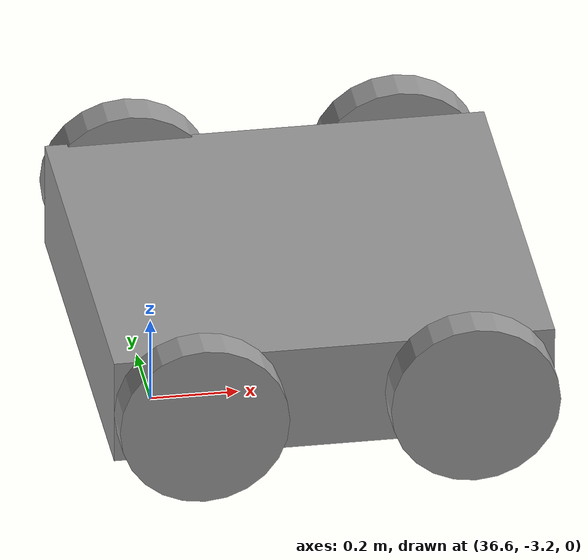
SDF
<?xml version='1.0'?>
<sdf version='1.6'>
  <model name='wheelrobot'>
    <link name='link_0'>
      <pose frame=''>37.0203 -2.68335 -0.038675 0 -0 0</pose>
      <inertial>
        <mass>1</mass>
        <inertia>
          <ixx>0.166667</ixx>
          <ixy>0</ixy>
          <ixz>0</ixz>
          <iyy>0.166667</iyy>
          <iyz>0</iyz>
          <izz>0.166667</izz>
        </inertia>
        <pose frame=''>0 0 0 0 -0 0</pose>
      </inertial>
      <gravity>1</gravity>
      <self_collide>0</self_collide>
      <kinematic>0</kinematic>
      <visual name='visual'>
        <pose frame=''>0 0 0 0 -0 0</pose>
        <geometry>
          <box>
            <size>1 1 0.25</size>
          </box>
        </geometry>
        <material>
          <lighting>1</lighting>
          <script>
            <uri>file://media/materials/scripts/gazebo.material</uri>
            <name>Gazebo/Grey</name>
          </script>
          <shader type='pixel'>
            <normal_map>__default__</normal_map>
          </shader>
          <ambient>0.3 0.3 0.3 1</ambient>
          <diffuse>0.7 0.7 0.7 1</diffuse>
          <specular>0.01 0.01 0.01 1</specular>
          <emissive>0 0 0 1</emissive>
        </material>
        <transparency>0</transparency>
        <cast_shadows>1</cast_shadows>
      </visual>
      <collision name='collision'>
        <laser_retro>0</laser_retro>
        <max_contacts>10</max_contacts>
        <pose frame=''>0 0 0 0 -0 0</pose>
        <geometry>
          <box>
            <size>1 1 0.25</size>
          </box>
        </geometry>
        <surface>
          <friction>
            <ode>
              <mu>1</mu>
              <mu2>1</mu2>
              <fdir1>0 0 0</fdir1>
              <slip1>0</slip1>
              <slip2>0</slip2>
            </ode>
            <torsional>
              <coefficient>1</coefficient>
              <patch_radius>0</patch_radius>
              <surface_radius>0</surface_radius>
              <use_patch_radius>1</use_patch_radius>
              <ode>
                <slip>0</slip>
              </ode>
            </torsional>
          </friction>
          <bounce>
            <restitution_coefficient>0</restitution_coefficient>
            <threshold>1e+06</threshold>
          </bounce>
          <contact>
            <collide_without_contact>0</collide_without_contact>
            <collide_without_contact_bitmask>1</collide_without_contact_bitmask>
            <collide_bitmask>1</collide_bitmask>
            <ode>
              <soft_cfm>0</soft_cfm>
              <soft_erp>0.2</soft_erp>
              <kp>1e+13</kp>
              <kd>1</kd>
              <max_vel>0.01</max_vel>
              <min_depth>0</min_depth>
            </ode>
            <bullet>
              <split_impulse>1</split_impulse>
              <split_impulse_penetration_threshold>-0.01</split_impulse_penetration_threshold>
              <soft_cfm>0</soft_cfm>
              <soft_erp>0.2</soft_erp>
              <kp>1e+13</kp>
              <kd>1</kd>
            </bullet>
          </contact>
        </surface>
      </collision>
    </link>
    <link name='link_1'>
      <pose frame=''>-185.101 13.4296 0.211325 1.5707 -0 0</pose>
      <inertial>
        <mass>0.0399515</mass>
        <inertia>
          <ixx>0.000784523</ixx>
          <ixy>0</ixy>
          <ixz>0</ixz>
          <iyy>0.000784523</iyy>
          <iyz>0</iyz>
          <izz>0.00144147</izz>
        </inertia>
        <pose frame=''>0 0 0 0 -0 0</pose>
      </inertial>
      <gravity>1</gravity>
      <self_collide>0</self_collide>
      <kinematic>0</kinematic>
      <visual name='visual'>
        <pose frame=''>0 0 0 0 -0 0</pose>
        <geometry>
          <cylinder>
            <radius>0.268628</radius>
            <length>0.138418</length>
          </cylinder>
        </geometry>
        <material>
          <lighting>1</lighting>
          <script>
            <uri>file://media/materials/scripts/gazebo.material</uri>
            <name>Gazebo/Grey</name>
          </script>
          <shader type='pixel'>
            <normal_map>__default__</normal_map>
          </shader>
          <ambient>0.3 0.3 0.3 1</ambient>
          <diffuse>0.7 0.7 0.7 1</diffuse>
          <specular>0.01 0.01 0.01 1</specular>
          <emissive>0 0 0 1</emissive>
        </material>
        <transparency>0</transparency>
        <cast_shadows>1</cast_shadows>
      </visual>
      <collision name='collision'>
        <laser_retro>0</laser_retro>
        <max_contacts>10</max_contacts>
        <pose frame=''>0 0 0 0 -0 0</pose>
        <geometry>
          <cylinder>
            <radius>0.268628</radius>
            <length>0.138418</length>
          </cylinder>
        </geometry>
        <surface>
          <friction>
            <ode>
              <mu>1</mu>
              <mu2>1</mu2>
              <fdir1>0 0 0</fdir1>
              <slip1>0</slip1>
              <slip2>0</slip2>
            </ode>
            <torsional>
              <coefficient>1</coefficient>
              <patch_radius>0</patch_radius>
              <surface_radius>0</surface_radius>
              <use_patch_radius>1</use_patch_radius>
              <ode>
                <slip>0</slip>
              </ode>
            </torsional>
          </friction>
          <bounce>
            <restitution_coefficient>0</restitution_coefficient>
            <threshold>1e+06</threshold>
          </bounce>
          <contact>
            <collide_without_contact>0</collide_without_contact>
            <collide_without_contact_bitmask>1</collide_without_contact_bitmask>
            <collide_bitmask>1</collide_bitmask>
            <ode>
              <soft_cfm>0</soft_cfm>
              <soft_erp>0.2</soft_erp>
              <kp>1e+13</kp>
              <kd>1</kd>
              <max_vel>0.01</max_vel>
              <min_depth>0</min_depth>
            </ode>
            <bullet>
              <split_impulse>1</split_impulse>
              <split_impulse_penetration_threshold>-0.01</split_impulse_penetration_threshold>
              <soft_cfm>0</soft_cfm>
              <soft_erp>0.2</soft_erp>
              <kp>1e+13</kp>
              <kd>1</kd>
            </bullet>
          </contact>
        </surface>
      </collision>
    </link>
    <link name='link_2'>
      <pose frame=''>36.7129 -2.15214 -0.04317 1.5707 -0 0</pose>
      <inertial>
        <mass>0.0130929</mass>
        <inertia>
          <ixx>0.00012997</ixx>
          <ixy>0</ixy>
          <ixz>0</ixz>
          <iyy>0.00012997</iyy>
          <iyz>0</iyz>
          <izz>0.00024297</izz>
        </inertia>
        <pose frame=''>0 0 0 0 -0 0</pose>
      </inertial>
      <gravity>1</gravity>
      <self_collide>0</self_collide>
      <kinematic>0</kinematic>
      <visual name='visual'>
        <pose frame=''>0 0 0 0 -0 0</pose>
        <geometry>
          <cylinder>
            <radius>0.192653</radius>
            <length>0.0881907</length>
          </cylinder>
        </geometry>
        <material>
          <lighting>1</lighting>
          <script>
            <uri>file://media/materials/scripts/gazebo.material</uri>
            <name>Gazebo/Grey</name>
          </script>
          <shader type='pixel'>
            <normal_map>__default__</normal_map>
          </shader>
          <ambient>0.3 0.3 0.3 1</ambient>
          <diffuse>0.7 0.7 0.7 1</diffuse>
          <specular>0.01 0.01 0.01 1</specular>
          <emissive>0 0 0 1</emissive>
        </material>
        <transparency>0</transparency>
        <cast_shadows>1</cast_shadows>
      </visual>
      <collision name='collision'>
        <laser_retro>0</laser_retro>
        <max_contacts>10</max_contacts>
        <pose frame=''>0 0 0 0 -0 0</pose>
        <geometry>
          <cylinder>
            <radius>0.192653</radius>
            <length>0.088191</length>
          </cylinder>
        </geometry>
        <surface>
          <friction>
            <ode>
              <mu>1</mu>
              <mu2>1</mu2>
              <fdir1>0 0 0</fdir1>
              <slip1>0</slip1>
              <slip2>0</slip2>
            </ode>
            <torsional>
              <coefficient>1</coefficient>
              <patch_radius>0</patch_radius>
              <surface_radius>0</surface_radius>
              <use_patch_radius>1</use_patch_radius>
              <ode>
                <slip>0</slip>
              </ode>
            </torsional>
          </friction>
          <bounce>
            <restitution_coefficient>0</restitution_coefficient>
            <threshold>1e+06</threshold>
          </bounce>
          <contact>
            <collide_without_contact>0</collide_without_contact>
            <collide_without_contact_bitmask>1</collide_without_contact_bitmask>
            <collide_bitmask>1</collide_bitmask>
            <ode>
              <soft_cfm>0</soft_cfm>
              <soft_erp>0.2</soft_erp>
              <kp>1e+13</kp>
              <kd>1</kd>
              <max_vel>0.01</max_vel>
              <min_depth>0</min_depth>
            </ode>
            <bullet>
              <split_impulse>1</split_impulse>
              <split_impulse_penetration_threshold>-0.01</split_impulse_penetration_threshold>
              <soft_cfm>0</soft_cfm>
              <soft_erp>0.2</soft_erp>
              <kp>1e+13</kp>
              <kd>1</kd>
            </bullet>
          </contact>
        </surface>
      </collision>
    </link>
    <link name='link_2_clone'>
      <pose frame=''>37.3276 -2.13924 -0.04317 1.5707 -0 0</pose>
      <inertial>
        <mass>0.0130929</mass>
        <inertia>
          <ixx>0.000129972</ixx>
          <ixy>0</ixy>
          <ixz>0</ixz>
          <iyy>0.000129972</iyy>
          <iyz>0</iyz>
          <izz>0.000242973</izz>
        </inertia>
        <pose frame=''>0 0 0 0 -0 0</pose>
      </inertial>
      <self_collide>0</self_collide>
      <kinematic>0</kinematic>
      <visual name='visual'>
        <pose frame=''>0 0 0 0 -0 0</pose>
        <geometry>
          <cylinder>
            <radius>0.192653</radius>
            <length>0.0881907</length>
          </cylinder>
        </geometry>
        <material>
          <lighting>1</lighting>
          <script>
            <uri>file://media/materials/scripts/gazebo.material</uri>
            <name>Gazebo/Grey</name>
          </script>
          <shader type='pixel'>
            <normal_map>__default__</normal_map>
          </shader>
          <ambient>0.3 0.3 0.3 1</ambient>
          <diffuse>0.7 0.7 0.7 1</diffuse>
          <specular>0.01 0.01 0.01 1</specular>
          <emissive>0 0 0 1</emissive>
        </material>
        <transparency>0</transparency>
        <cast_shadows>1</cast_shadows>
      </visual>
      <collision name='collision'>
        <laser_retro>0</laser_retro>
        <max_contacts>10</max_contacts>
        <pose frame=''>0 0 0 0 -0 0</pose>
        <geometry>
          <cylinder>
            <radius>0.192653</radius>
            <length>0.088191</length>
          </cylinder>
        </geometry>
        <surface>
          <friction>
            <ode>
              <mu>1</mu>
              <mu2>1</mu2>
              <fdir1>0 0 0</fdir1>
              <slip1>0</slip1>
              <slip2>0</slip2>
            </ode>
            <torsional>
              <coefficient>1</coefficient>
              <patch_radius>0</patch_radius>
              <surface_radius>0</surface_radius>
              <use_patch_radius>1</use_patch_radius>
              <ode>
                <slip>0</slip>
              </ode>
            </torsional>
          </friction>
          <bounce>
            <restitution_coefficient>0</restitution_coefficient>
            <threshold>1e+06</threshold>
          </bounce>
          <contact>
            <collide_without_contact>0</collide_without_contact>
            <collide_without_contact_bitmask>1</collide_without_contact_bitmask>
            <collide_bitmask>1</collide_bitmask>
            <ode>
              <soft_cfm>0</soft_cfm>
              <soft_erp>0.2</soft_erp>
              <kp>1e+13</kp>
              <kd>1</kd>
              <max_vel>0.01</max_vel>
              <min_depth>0</min_depth>
            </ode>
            <bullet>
              <split_impulse>1</split_impulse>
              <split_impulse_penetration_threshold>-0.01</split_impulse_penetration_threshold>
              <soft_cfm>0</soft_cfm>
              <soft_erp>0.2</soft_erp>
              <kp>1e+13</kp>
              <kd>1</kd>
            </bullet>
          </contact>
        </surface>
      </collision>
    </link>
    <link name='link_2_clone_0'>
      <pose frame=''>37.3276 -3.22747 -0.043147 1.5707 -0 0</pose>
      <inertial>
        <mass>0.0130929</mass>
        <inertia>
          <ixx>0.000129972</ixx>
          <ixy>0</ixy>
          <ixz>0</ixz>
          <iyy>0.000129972</iyy>
          <iyz>0</iyz>
          <izz>0.000242973</izz>
        </inertia>
        <pose frame=''>0 0 0 0 -0 0</pose>
      </inertial>
      <self_collide>0</self_collide>
      <kinematic>0</kinematic>
      <visual name='visual'>
        <pose frame=''>0 0 0 0 -0 0</pose>
        <geometry>
          <cylinder>
            <radius>0.192653</radius>
            <length>0.0881907</length>
          </cylinder>
        </geometry>
        <material>
          <lighting>1</lighting>
          <script>
            <uri>file://media/materials/scripts/gazebo.material</uri>
            <name>Gazebo/Grey</name>
          </script>
          <shader type='pixel'>
            <normal_map>__default__</normal_map>
          </shader>
          <ambient>0.3 0.3 0.3 1</ambient>
          <diffuse>0.7 0.7 0.7 1</diffuse>
          <specular>0.01 0.01 0.01 1</specular>
          <emissive>0 0 0 1</emissive>
        </material>
        <transparency>0</transparency>
        <cast_shadows>1</cast_shadows>
      </visual>
      <collision name='collision'>
        <laser_retro>0</laser_retro>
        <max_contacts>10</max_contacts>
        <pose frame=''>0 0 0 0 -0 0</pose>
        <geometry>
          <cylinder>
            <radius>0.192653</radius>
            <length>0.088191</length>
          </cylinder>
        </geometry>
        <surface>
          <friction>
            <ode>
              <mu>1</mu>
              <mu2>1</mu2>
              <fdir1>0 0 0</fdir1>
              <slip1>0</slip1>
              <slip2>0</slip2>
            </ode>
            <torsional>
              <coefficient>1</coefficient>
              <patch_radius>0</patch_radius>
              <surface_radius>0</surface_radius>
              <use_patch_radius>1</use_patch_radius>
              <ode>
                <slip>0</slip>
              </ode>
            </torsional>
          </friction>
          <bounce>
            <restitution_coefficient>0</restitution_coefficient>
            <threshold>1e+06</threshold>
          </bounce>
          <contact>
            <collide_without_contact>0</collide_without_contact>
            <collide_without_contact_bitmask>1</collide_without_contact_bitmask>
            <collide_bitmask>1</collide_bitmask>
            <ode>
              <soft_cfm>0</soft_cfm>
              <soft_erp>0.2</soft_erp>
              <kp>1e+13</kp>
              <kd>1</kd>
              <max_vel>0.01</max_vel>
              <min_depth>0</min_depth>
            </ode>
            <bullet>
              <split_impulse>1</split_impulse>
              <split_impulse_penetration_threshold>-0.01</split_impulse_penetration_threshold>
              <soft_cfm>0</soft_cfm>
              <soft_erp>0.2</soft_erp>
              <kp>1e+13</kp>
              <kd>1</kd>
            </bullet>
          </contact>
        </surface>
      </collision>
    </link>
    <link name='link_2_clone_1'>
      <pose frame=''>36.7129 -3.22747 -0.043161 1.5707 -0 0</pose>
      <inertial>
        <mass>0.0130929</mass>
        <inertia>
          <ixx>0.000129972</ixx>
          <ixy>0</ixy>
          <ixz>0</ixz>
          <iyy>0.000129972</iyy>
          <iyz>0</iyz>
          <izz>0.000242973</izz>
        </inertia>
        <pose frame=''>0 0 0 0 -0 0</pose>
      </inertial>
      <self_collide>0</self_collide>
      <kinematic>0</kinematic>
      <visual name='visual'>
        <pose frame=''>0 0 0 0 -0 0</pose>
        <geometry>
          <cylinder>
            <radius>0.192653</radius>
            <length>0.0881907</length>
          </cylinder>
        </geometry>
        <material>
          <lighting>1</lighting>
          <script>
            <uri>file://media/materials/scripts/gazebo.material</uri>
            <name>Gazebo/Grey</name>
          </script>
          <shader type='pixel'>
            <normal_map>__default__</normal_map>
          </shader>
          <ambient>0.3 0.3 0.3 1</ambient>
          <diffuse>0.7 0.7 0.7 1</diffuse>
          <specular>0.01 0.01 0.01 1</specular>
          <emissive>0 0 0 1</emissive>
        </material>
        <transparency>0</transparency>
        <cast_shadows>1</cast_shadows>
      </visual>
      <collision name='collision'>
        <laser_retro>0</laser_retro>
        <max_contacts>10</max_contacts>
        <pose frame=''>0 0 0 0 -0 0</pose>
        <geometry>
          <cylinder>
            <radius>0.192653</radius>
            <length>0.088191</length>
          </cylinder>
        </geometry>
        <surface>
          <friction>
            <ode>
              <mu>1</mu>
              <mu2>1</mu2>
              <fdir1>0 0 0</fdir1>
              <slip1>0</slip1>
              <slip2>0</slip2>
            </ode>
            <torsional>
              <coefficient>1</coefficient>
              <patch_radius>0</patch_radius>
              <surface_radius>0</surface_radius>
              <use_patch_radius>1</use_patch_radius>
              <ode>
                <slip>0</slip>
              </ode>
            </torsional>
          </friction>
          <bounce>
            <restitution_coefficient>0</restitution_coefficient>
            <threshold>1e+06</threshold>
          </bounce>
          <contact>
            <collide_without_contact>0</collide_without_contact>
            <collide_without_contact_bitmask>1</collide_without_contact_bitmask>
            <collide_bitmask>1</collide_bitmask>
            <ode>
              <soft_cfm>0</soft_cfm>
              <soft_erp>0.2</soft_erp>
              <kp>1e+13</kp>
              <kd>1</kd>
              <max_vel>0.01</max_vel>
              <min_depth>0</min_depth>
            </ode>
            <bullet>
              <split_impulse>1</split_impulse>
              <split_impulse_penetration_threshold>-0.01</split_impulse_penetration_threshold>
              <soft_cfm>0</soft_cfm>
              <soft_erp>0.2</soft_erp>
              <kp>1e+13</kp>
              <kd>1</kd>
            </bullet>
          </contact>
        </surface>
      </collision>
    </link>
    <joint name='link_0_JOINT_0' type='revolute'>
      <parent>link_0</parent>
      <child>link_2_clone_1</child>
      <pose frame=''>0 0 0 0 -0 0</pose>
      <axis>
        <xyz>0 0 1</xyz>
        <use_parent_model_frame>0</use_parent_model_frame>
        <limit>
          <lower>-1.79769e+308</lower>
          <upper>1.79769e+308</upper>
          <effort>-1</effort>
          <velocity>-1</velocity>
        </limit>
        <dynamics>
          <spring_reference>0</spring_reference>
          <spring_stiffness>0</spring_stiffness>
          <damping>0</damping>
        </dynamics>
      </axis>
      <physics>
        <ode>
          <limit>
            <cfm>0</cfm>
            <erp>0.2</erp>
          </limit>
          <suspension>
            <cfm>0</cfm>
            <erp>0.2</erp>
          </suspension>
        </ode>
      </physics>
    </joint>
    <joint name='link_0_JOINT_1' type='revolute'>
      <parent>link_0</parent>
      <child>link_2_clone_0</child>
      <pose frame=''>0 0 0 0 -0 0</pose>
      <axis>
        <xyz>1 0 0</xyz>
        <use_parent_model_frame>0</use_parent_model_frame>
        <limit>
          <lower>-1.79769e+308</lower>
          <upper>1.79769e+308</upper>
          <effort>-1</effort>
          <velocity>-1</velocity>
        </limit>
        <dynamics>
          <spring_reference>0</spring_reference>
          <spring_stiffness>0</spring_stiffness>
          <damping>0</damping>
        </dynamics>
      </axis>
      <physics>
        <ode>
          <limit>
            <cfm>0</cfm>
            <erp>0.2</erp>
          </limit>
          <suspension>
            <cfm>0</cfm>
            <erp>0.2</erp>
          </suspension>
        </ode>
      </physics>
    </joint>
    <joint name='link_0_JOINT_2' type='revolute'>
      <parent>link_0</parent>
      <child>link_2</child>
      <pose frame=''>0 0 0 0 -0 0</pose>
      <axis>
        <xyz>0 0 1</xyz>
        <use_parent_model_frame>0</use_parent_model_frame>
        <limit>
          <lower>-1.79769e+308</lower>
          <upper>1.79769e+308</upper>
          <effort>-1</effort>
          <velocity>-1</velocity>
        </limit>
        <dynamics>
          <spring_reference>0</spring_reference>
          <spring_stiffness>0</spring_stiffness>
          <damping>0</damping>
        </dynamics>
      </axis>
      <physics>
        <ode>
          <limit>
            <cfm>0</cfm>
            <erp>0.2</erp>
          </limit>
          <suspension>
            <cfm>0</cfm>
            <erp>0.2</erp>
          </suspension>
        </ode>
      </physics>
    </joint>
    <joint name='link_0_JOINT_3' type='revolute'>
      <parent>link_0</parent>
      <child>link_2_clone</child>
      <pose frame=''>0 0 0 0 -0 0</pose>
      <axis>
        <xyz>0 0 1</xyz>
        <use_parent_model_frame>0</use_parent_model_frame>
        <limit>
          <lower>-1.79769e+308</lower>
          <upper>1.79769e+308</upper>
          <effort>-1</effort>
          <velocity>-1</velocity>
        </limit>
        <dynamics>
          <spring_reference>0</spring_reference>
          <spring_stiffness>0</spring_stiffness>
          <damping>0</damping>
        </dynamics>
      </axis>
      <physics>
        <ode>
          <limit>
            <cfm>0</cfm>
            <erp>0.2</erp>
          </limit>
          <suspension>
            <cfm>0</cfm>
            <erp>0.2</erp>
          </suspension>
        </ode>
      </physics>
    </joint>
    <static>0</static>
    <allow_auto_disable>1</allow_auto_disable>
  </model>
</sdf>
